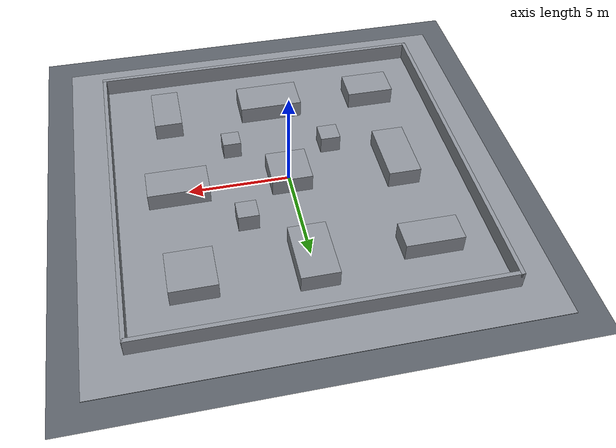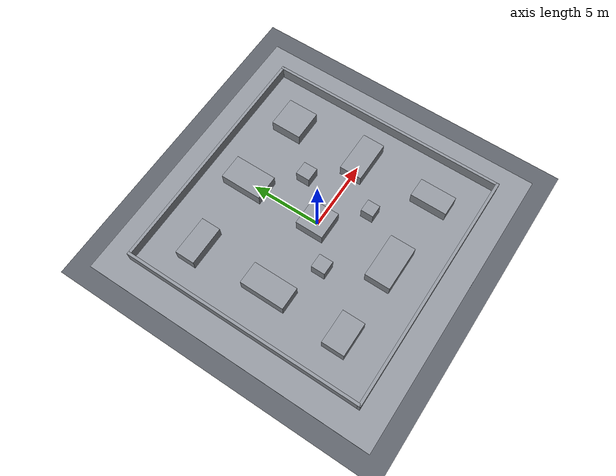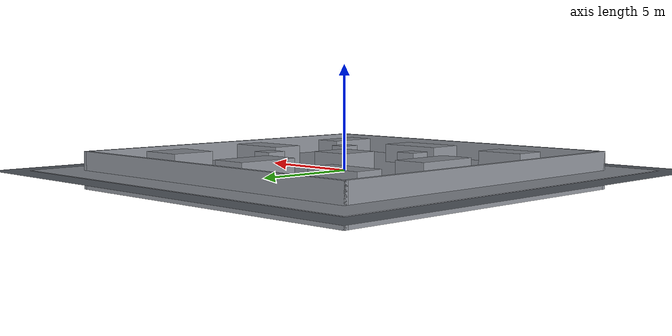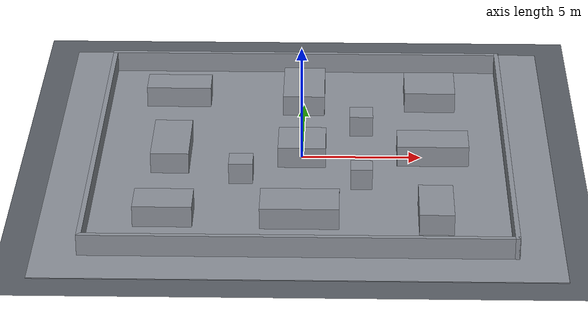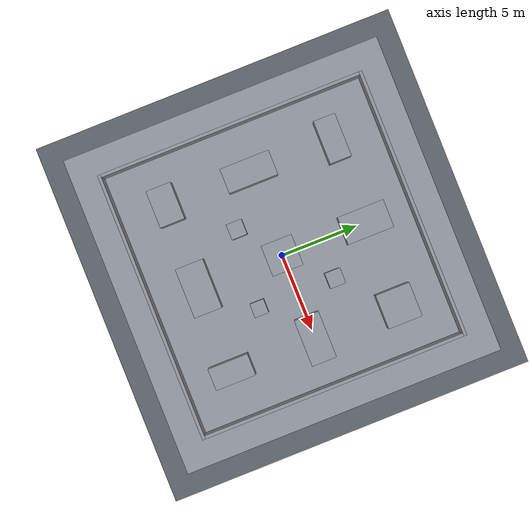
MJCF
<!-- Generated by robot_lab_maps/tools/gen_mjcf_worlds.py from
     maps/nav_obstacle/worlds/nav_obstacle.world - do not edit by hand. -->
<mujoco model="nav_obstacle">
  <option gravity="0 0 -9.81" />
  <compiler angle="radian" />
  <worldbody>
    <geom type="plane" size="100 100 0.1" contype="0" conaffinity="0" rgba="0.35 0.37 0.4 1" />
    <geom pos="0 0 -0.05" quat="1 0 0 0" rgba="0.55 0.57 0.6 1" type="box" size="10.5 10.5 0.05" />
    <geom pos="0 -8.6 0" quat="1 0 0 0" rgba="0.55 0.57 0.6 1" type="box" size="8.7 0.1 0.9" />
    <geom pos="0 8.6 0" quat="1 0 0 0" rgba="0.55 0.57 0.6 1" type="box" size="8.7 0.1 0.9" />
    <geom pos="-8.6 0 0" quat="1 0 0 0" rgba="0.55 0.57 0.6 1" type="box" size="0.1 8.7 0.9" />
    <geom pos="8.6 0 0" quat="1 0 0 0" rgba="0.55 0.57 0.6 1" type="box" size="0.1 8.7 0.9" />
    <geom pos="-5.5 -5.5 0" quat="1 0 0 0" rgba="0.55 0.57 0.6 1" type="box" size="1.2 0.8 0.9" />
    <geom pos="-5.5 0 0" quat="1 0 0 0" rgba="0.55 0.57 0.6 1" type="box" size="0.8 1.6 0.9" />
    <geom pos="-5.5 5.5 0" quat="1 0 0 0" rgba="0.55 0.57 0.6 1" type="box" size="1.4 0.7 0.9" />
    <geom pos="0 -5.5 0" quat="1 0 0 0" rgba="0.55 0.57 0.6 1" type="box" size="1.6 0.9 0.9" />
    <geom pos="0 0 0" quat="1 0 0 0" rgba="0.55 0.57 0.6 1" type="box" size="1 1 0.9" />
    <geom pos="0 5.5 0" quat="1 0 0 0" rgba="0.55 0.57 0.6 1" type="box" size="0.9 1.5 0.9" />
    <geom pos="5.5 -5.5 0" quat="1 0 0 0" rgba="0.55 0.57 0.6 1" type="box" size="0.7 1.3 0.9" />
    <geom pos="5.5 0 0" quat="1 0 0 0" rgba="0.55 0.57 0.6 1" type="box" size="1.5 0.8 0.9" />
    <geom pos="5.5 5.5 0" quat="1 0 0 0" rgba="0.55 0.57 0.6 1" type="box" size="1.1 1.1 0.9" />
    <geom pos="-2.5 -2 0" quat="1 0 0 0" rgba="0.55 0.57 0.6 1" type="box" size="0.5 0.5 0.9" />
    <geom pos="2.5 2.5 0" quat="1 0 0 0" rgba="0.55 0.57 0.6 1" type="box" size="0.5 0.5 0.9" />
    <geom pos="2.5 -2.5 0" quat="1 0 0 0" rgba="0.55 0.57 0.6 1" type="box" size="0.45 0.45 0.9" />
    <light diffuse="0.8 0.8 0.8" pos="0 0 10" dir="0 0 -1" castshadow="true" />
    <light diffuse="0.3 0.3 0.3" pos="0 -6 6" dir="0 1 -1" />
  </worldbody>
</mujoco>
